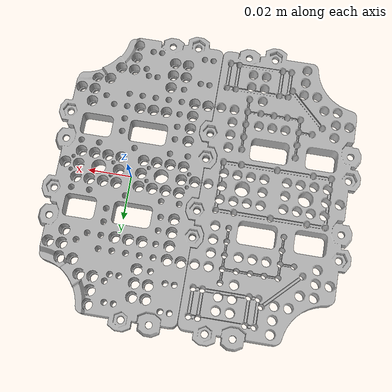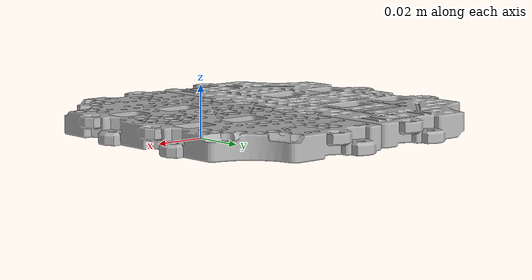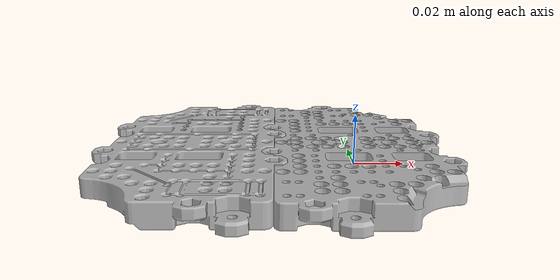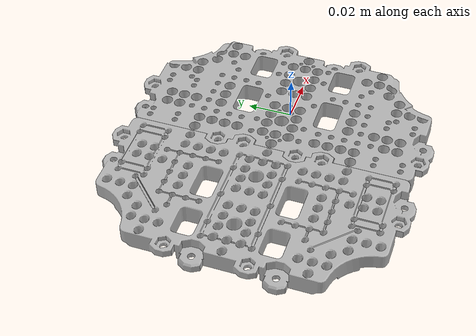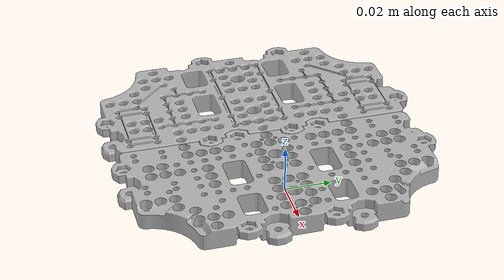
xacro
<?xml version="1.0" ?>
<robot name="UCV_robot_urdf" xmlns:xacro="http://www.ros.org/wiki/xacro">

<xacro:include filename="$(find UCV_robot_urdf_description)/urdf/materials.xacro" />
<xacro:include filename="$(find UCV_robot_urdf_description)/urdf/UCV_robot_urdf.trans" />
<xacro:include filename="$(find UCV_robot_urdf_description)/urdf/UCV_robot_urdf.gazebo" />
<link name="base_link">
  <inertial>
    <origin xyz="-0.0028423334837031655 8.430721147465176e-06 0.004434783297020629" rpy="0 0 0"/>
    <mass value="0.3635670282557214"/>
    <inertia ixx="0.000485" iyy="0.000123" izz="0.000603" ixy="0.0" iyz="0.0" ixz="0.0"/>
  </inertial>
  <visual>
    <origin xyz="0 0 0" rpy="0 0 0"/>
    <geometry>
      <mesh filename="package://UCV_robot_urdf_description/meshes/base_link.stl" scale="0.001 0.001 0.001"/>
    </geometry>
    <material name="silver"/>
  </visual>
  <collision>
    <origin xyz="0 0 0" rpy="0 0 0"/>
    <geometry>
      <mesh filename="package://UCV_robot_urdf_description/meshes/base_link.stl" scale="0.001 0.001 0.001"/>
    </geometry>
  </collision>
</link>

<link name="Component2_1">
  <inertial>
    <origin xyz="-0.02915766829205764 -0.023991569278852484 0.0002652167029993909" rpy="0 0 0"/>
    <mass value="0.3635670282557214"/>
    <inertia ixx="0.000485" iyy="0.000123" izz="0.000603" ixy="-0.0" iyz="-0.0" ixz="0.0"/>
  </inertial>
  <visual>
    <origin xyz="0.032 -0.024 -0.0047" rpy="0 0 0"/>
    <geometry>
      <mesh filename="package://UCV_robot_urdf_description/meshes/Component2_1.stl" scale="0.001 0.001 0.001"/>
    </geometry>
    <material name="silver"/>
  </visual>
  <collision>
    <origin xyz="0.032 -0.024 -0.0047" rpy="0 0 0"/>
    <geometry>
      <mesh filename="package://UCV_robot_urdf_description/meshes/Component2_1.stl" scale="0.001 0.001 0.001"/>
    </geometry>
  </collision>
</link>

<joint name="Rigid 1" type="fixed">
  <origin xyz="-0.032 0.024 0.0047" rpy="0 0 0"/>
  <parent link="base_link"/>
  <child link="Component2_1"/>
</joint>

</robot>

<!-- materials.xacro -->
<robot name="UCV_robot_urdf" xmlns:xacro="http://www.ros.org/wiki/xacro" >

<material name="silver">
  <color rgba="0.700 0.700 0.700 1.000"/>
</material>

</robot>

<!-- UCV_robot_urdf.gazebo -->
<robot name="UCV_robot_urdf" xmlns:xacro="http://www.ros.org/wiki/xacro" >

<xacro:property name="body_color" value="Gazebo/Silver" />

<gazebo>
  <plugin name="control" filename="libgazebo_ros_control.so"/>
</gazebo>
<gazebo reference="base_link">
  <material>${body_color}</material>
  <mu1>0.2</mu1>
  <mu2>0.2</mu2>
  <selfCollide>true</selfCollide>
  <gravity>true</gravity>
</gazebo>

<gazebo reference="Component2_1">
  <material>${body_color}</material>
  <mu1>0.2</mu1>
  <mu2>0.2</mu2>
  <selfCollide>true</selfCollide>
</gazebo>

</robot>
